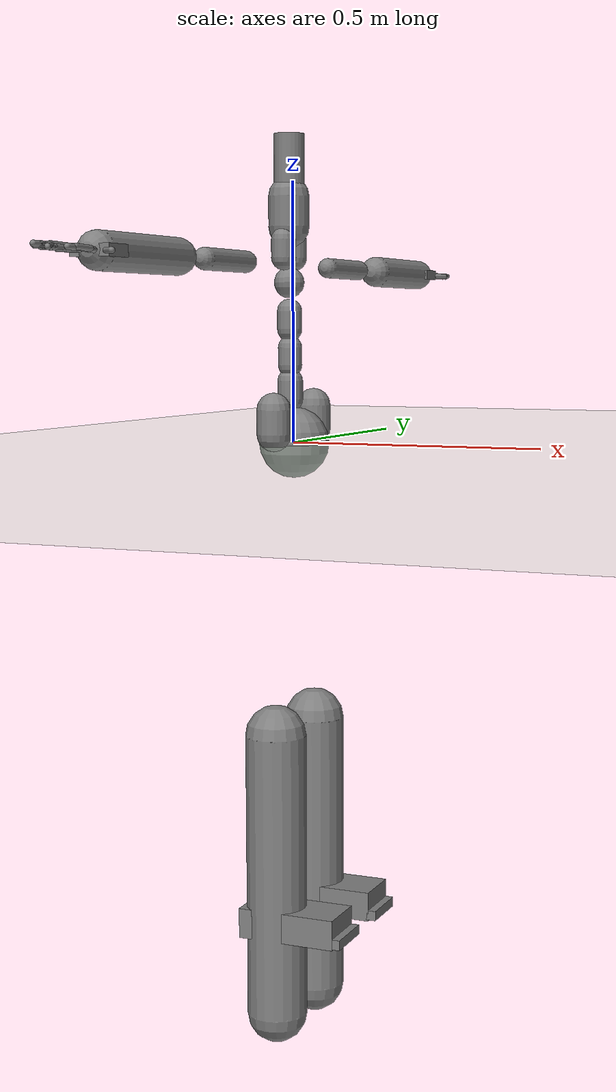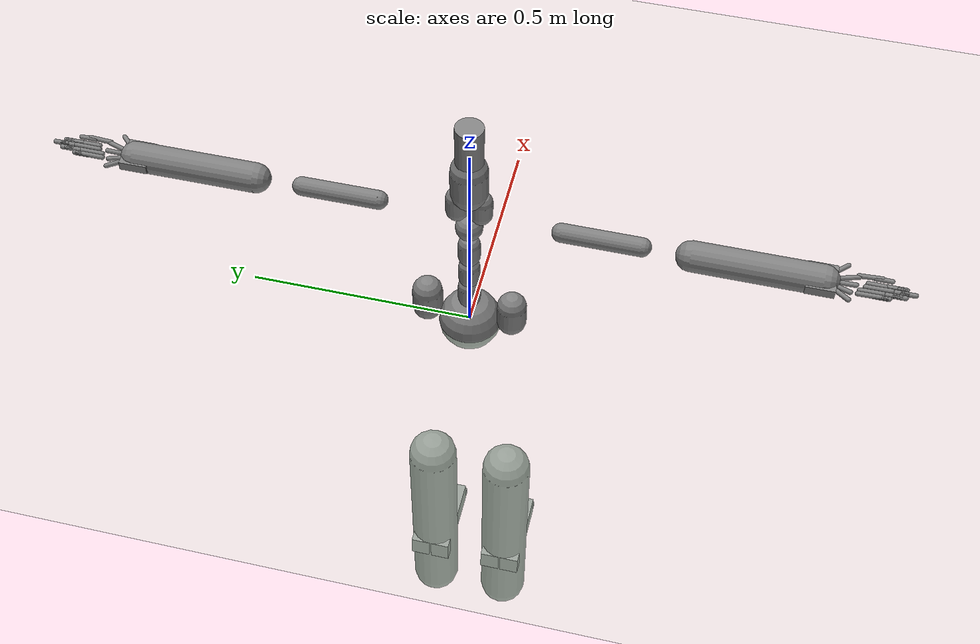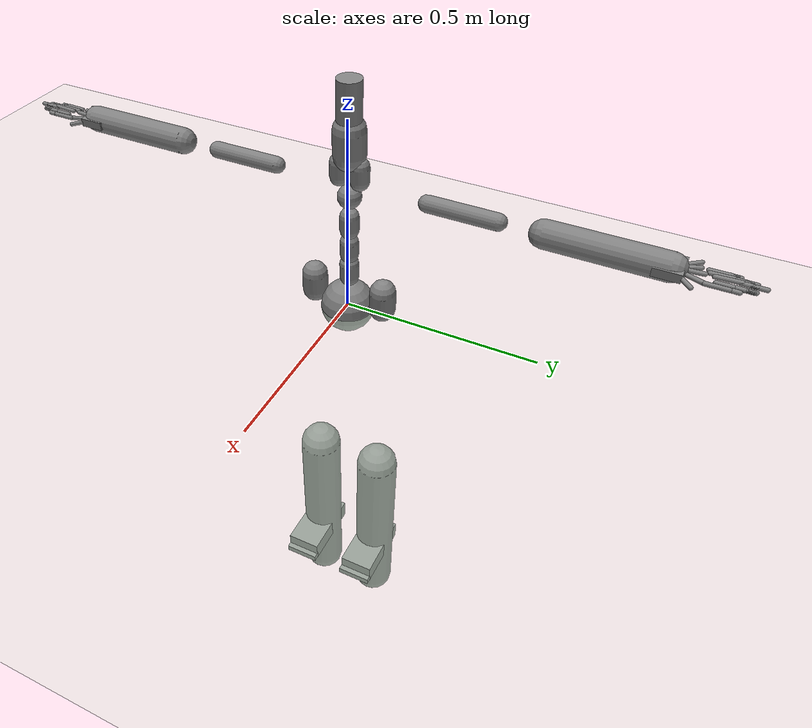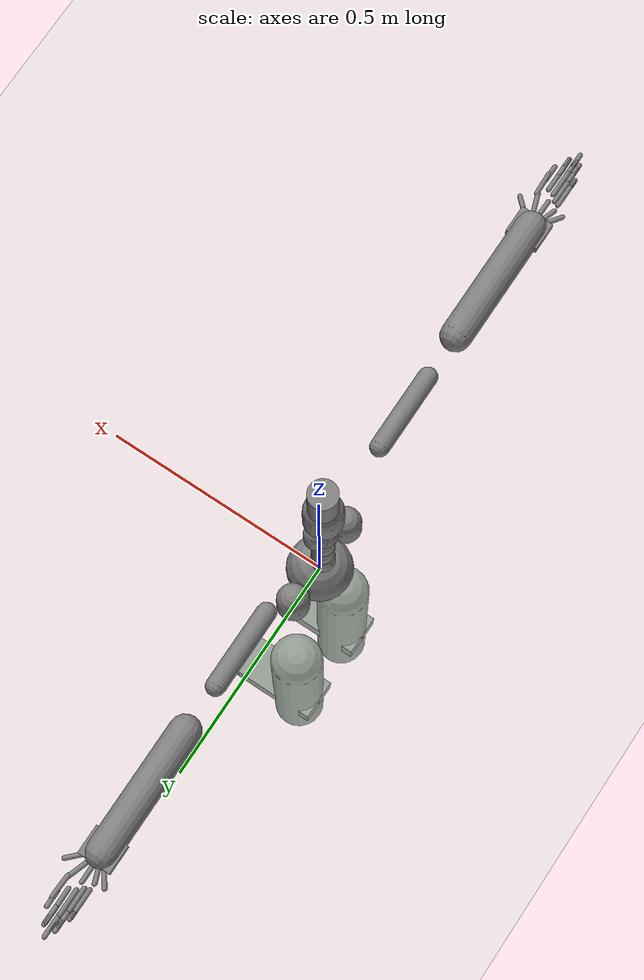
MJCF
<?xml version="1.0" ?>
<mujoco model="humanoid">
  <compiler coordinate="local"/>
  <statistic extent="2" center="0 0 1"/>
  <option timestep="0.00555"/>
  <default>
    <motor ctrlrange="-1 1" ctrllimited="true"/>
    <geom type="capsule" condim="1" friction="1.0 0.05 0.05" solimp=".9 .99 .003" solref=".015 1"/>
    <joint type="hinge" damping="0.1" stiffness="5" armature=".007" limited="true" solimplimit="0 .99 .01"/>
    <site size=".04" group="3"/>
  </default>
  <asset>
    <texture type="skybox" builtin="gradient" rgb1=".4 .5 .6" rgb2="0 0 0" width="100" height="100"/>
    <texture builtin="flat" height="1278" mark="cross" markrgb="1 1 1" name="texgeom" random="0.01" rgb1="0.8 0.6 0.4" rgb2="0.8 0.6 0.4" type="cube" width="127"/>
    <texture builtin="checker" height="100" name="texplane" rgb1="0 0 0" rgb2="0.8 0.8 0.8" type="2d" width="100"/>
    <material name="MatPlane" reflectance="0.5" shininess="1" specular="1" texrepeat="60 60" texture="texplane"/>
    <material name="geom" texture="texgeom" texuniform="true"/>
  </asset>
  <worldbody>
    <light cutoff="100" diffuse="1 1 1" dir="-0 0 -1.3" directional="true" exponent="1" pos="0 0 1.3" specular=".1 .1 .1"/>
    <geom conaffinity="1" condim="3" name="floor" pos="0 0 0" rgba="0.8 0.9 0.8 1" size="100 100 .2" type="plane" material="MatPlane"/>
    <body name="pHipOrigin" pos="0 0 0">
      <freejoint name="pHipOrigin"/>
      <geom type="sphere" contype="1" conaffinity="1" density="4629.6296296296305" size="0.06901" pos="0.0000 0.0000 -0.0000"/>
      <body name="jL5S1" pos="-0.00777689 0 0.06999177">
        <geom type="capsule" contype="1" conaffinity="1" density="1000" fromto="0 0 0.01408 0 0 0.04930" size="0.02465"/>
        <joint name="jL5S1_x" type="hinge" pos="0 0 0" axis="1 0 0" stiffness="500" damping="500" armature="0.02" range="-180.0000 180.0000"/>
        <joint name="jL5S1_y" type="hinge" pos="0 0 0" axis="0 1 0" stiffness="500" damping="500" armature="0.02" range="-180.0000 180.0000"/>
        <joint name="jL5S1_z" type="hinge" pos="0 0 0" axis="0 0 1" stiffness="500" damping="500" armature="0.02" range="-180.0000 180.0000"/>
        <body name="jL4L3" pos="0 0 0.06669865">
          <geom type="capsule" contype="1" conaffinity="1" density="1000" fromto="0 0 0.01334 0 0 0.04669" size="0.02334"/>
          <joint name="jL4L3_x" type="hinge" pos="0 0 0" axis="1 0 0" stiffness="500" damping="500" armature="0.02" range="-180.0000 180.0000"/>
          <joint name="jL4L3_y" type="hinge" pos="0 0 0" axis="0 1 0" stiffness="500" damping="500" armature="0.02" range="-180.0000 180.0000"/>
          <joint name="jL4L3_z" type="hinge" pos="0 0 0" axis="0 0 1" stiffness="500" damping="500" armature="0.02" range="-180.0000 180.0000"/>
          <body name="jL1T12" pos="-0.00052991 0 0.06868533">
            <geom type="capsule" contype="1" conaffinity="1" density="1000" fromto="0 0 0.01374 0 0 0.04808" size="0.02404"/>
            <joint name="jL1T12_x" type="hinge" pos="0 0 0" axis="1 0 0" stiffness="500" damping="500" armature="0.02" range="-180.0000 180.0000"/>
            <joint name="jL1T12_y" type="hinge" pos="0 0 0" axis="0 1 0" stiffness="500" damping="500" armature="0.02" range="-180.0000 180.0000"/>
            <joint name="jL1T12_z" type="hinge" pos="0 0 0" axis="0 0 1" stiffness="500" damping="500" armature="0.02" range="-180.0000 180.0000"/>
            <body name="jT9T8" pos="-0.00056753 0 0.07341858">
              <geom type="sphere" contype="1" conaffinity="1" density="1000" size="0.02937" pos="0.000 0.0000 0.029368"/>
              <joint name="jT9T8_x" type="hinge" pos="0 0 0" axis="1 0 0" stiffness="500" damping="500" armature="0.02" range="-180.0000 180.0000"/>
              <joint name="jT9T8_y" type="hinge" pos="0 0 0" axis="0 1 0" stiffness="500" damping="500" armature="0.02" range="-180.0000 180.0000"/>
              <joint name="jT9T8_z" type="hinge" pos="0 0 0" axis="0 0 1" stiffness="500" damping="500" armature="0.02" range="-180.0000 180.0000"/>
              <body name="jT1C7" pos="0 0 0.11275101">
                <geom type="capsule" contype="1" conaffinity="1" density="1000" fromto="0 0 0.02255 0 0 0.07893" size="0.03946"/>
                <joint name="jT1C7_x" type="hinge" pos="0 0 0" axis="1 0 0" stiffness="500" damping="500" armature="0.02" range="-180.0000 180.0000"/>
                <joint name="jT1C7_y" type="hinge" pos="0 0 0" axis="0 1 0" stiffness="500" damping="500" armature="0.02" range="-180.0000 180.0000"/>
                <joint name="jT1C7_z" type="hinge" pos="0 0 0" axis="0 0 1" stiffness="500" damping="500" armature="0.02" range="-180.0000 180.0000"/>
                <body name="jC1Head" pos="0.00115881 0 0.09822442">
                  <geom type="cylinder" contype="1" conaffinity="1" density="1000" fromto="0 0 0 0 0 0.09823" size="0.02947"/>
                  <joint name="jC1Head_x" type="hinge" pos="0 0 0" axis="1 0 0" stiffness="500" damping="500" armature="0.02" range="-180.0000 180.0000"/>
                  <joint name="jC1Head_y" type="hinge" pos="0 0 0" axis="0 1 0" stiffness="500" damping="500" armature="0.02" range="-180.0000 180.0000"/>
                  <joint name="jC1Head_z" type="hinge" pos="0 0 0" axis="0 0 1" stiffness="500" damping="500" armature="0.02" range="-180.0000 180.0000"/>
                </body>
              </body>
              <body name="jRightT4Shoulder" pos="0 -0.02567252 0.06259524">
                <geom type="capsule" contype="1" conaffinity="1" density="1000" fromto="0 0 0.01353 0 0 0.04736" size="0.02368"/>
                <joint name="jRightT4Shoulder_x" type="hinge" pos="0 0 0" axis="1 0 0" stiffness="500" damping="500" armature="0.02" range="-180.0000 180.0000"/>
                <joint name="jRightT4Shoulder_y" type="hinge" pos="0 0 0" axis="0 1 0" stiffness="500" damping="500" armature="0.02" range="-180.0000 180.0000"/>
                <joint name="jRightT4Shoulder_z" type="hinge" pos="0 0 0" axis="0 0 1" stiffness="500" damping="500" armature="0.02" range="-180.0000 180.0000"/>
                <body name="jRightShoulder" pos="0 -0.16582775 0">
                  <geom type="capsule" contype="1" conaffinity="1" density="1000" fromto="0 0 0 0.00000000 -0.16582775 0.00000000" size="0.01990"/>
                  <joint name="jRightShoulder_x" type="hinge" pos="0 0 0" axis="1 0 0" stiffness="500" damping="500" armature="0.02" range="-180.0000 180.0000"/>
                  <joint name="jRightShoulder_y" type="hinge" pos="0 0 0" axis="0 1 0" stiffness="500" damping="500" armature="0.02" range="-180.0000 180.0000"/>
                  <joint name="jRightShoulder_z" type="hinge" pos="0 0 0" axis="0 0 1" stiffness="500" damping="500" armature="0.02" range="-180.0000 180.0000"/>
                  <body name="jRightElbow" pos="0 -0.26546812 0">
                    <geom type="capsule" contype="1" conaffinity="1" density="1000" fromto="0 0 0 0.00000000 -0.26546812 0.00000000" size="0.03186"/>
                    <joint name="jRightElbow_x" type="hinge" pos="0 0 0" axis="1 0 0" stiffness="500" damping="500" armature="0.02" range="-180.0000 180.0000"/>
                    <joint name="jRightElbow_y" type="hinge" pos="0 0 0" axis="0 1 0" stiffness="500" damping="500" armature="0.02" range="-180.0000 180.0000"/>
                    <joint name="jRightElbow_z" type="hinge" pos="0 0 0" axis="0 0 1" stiffness="500" damping="500" armature="0.02" range="-180.0000 180.0000"/>
                    <body name="jRightWrist" pos="0.00010464 -0.25999904 0">
                      <geom density="1000" type="box" pos="0 0 0" size="0.035 0.03 0.01" quat="1.0000 0.0000 0.0000 0.0000"/>
                      <joint name="jRightWrist_x" type="hinge" pos="0 0 0" axis="1 0 0" stiffness="500" damping="500" armature="0.02" range="-180.0000 180.0000"/>
                      <joint name="jRightWrist_y" type="hinge" pos="0 0 0" axis="0 1 0" stiffness="500" damping="500" armature="0.02" range="-180.0000 180.0000"/>
                      <joint name="jRightWrist_z" type="hinge" pos="0 0 0" axis="0 0 1" stiffness="500" damping="500" armature="0.02" range="-180.0000 180.0000"/>
                      <body name="jRightFirstCMC" pos="0.02571220 -0.02464658 -0.00116441">
                        <geom type="capsule" contype="1" conaffinity="1" density="1000" fromto="0 0 0 0.02571220 -0.02464658 -0.00116441" size="0.005"/>
                        <joint name="jRightFirstCMC_x" type="hinge" pos="0 0 0" axis="1 0 0" stiffness="500" damping="500" armature="0.02" range="-180.0000 180.0000"/>
                        <joint name="jRightFirstCMC_y" type="hinge" pos="0 0 0" axis="0 1 0" stiffness="500" damping="500" armature="0.02" range="-180.0000 180.0000"/>
                        <joint name="jRightFirstCMC_z" type="hinge" pos="0 0 0" axis="0 0 1" stiffness="500" damping="500" armature="0.02" range="-180.0000 180.0000"/>
                        <body name="jRightFirstMCP" pos="0.00166209 -0.04690320 0.00099106">
                          <geom type="capsule" contype="1" conaffinity="1" density="1000" fromto="0 0 0 0.00166209 -0.04690320 0.00099106" size="0.005"/>
                          <joint name="jRightFirstMCP_x" type="hinge" pos="0 0 0" axis="1 0 0" stiffness="500" damping="500" armature="0.02" range="-180.0000 180.0000"/>
                          <joint name="jRightFirstMCP_y" type="hinge" pos="0 0 0" axis="0 1 0" stiffness="500" damping="500" armature="0.02" range="-180.0000 180.0000"/>
                          <joint name="jRightFirstMCP_z" type="hinge" pos="0 0 0" axis="0 0 1" stiffness="500" damping="500" armature="0.02" range="-180.0000 180.0000"/>
                          <body name="jRightIP" pos="0 -0.03297827 0">
                            <geom type="capsule" contype="1" conaffinity="1" density="1000" fromto="0 0 0 0.00000000 -0.03297827 0.00000000" size="0.005"/>
                            <joint name="jRightIP_x" type="hinge" pos="0 0 0" axis="1 0 0" stiffness="500" damping="500" armature="0.02" range="-180.0000 180.0000"/>
                            <joint name="jRightIP_y" type="hinge" pos="0 0 0" axis="0 1 0" stiffness="500" damping="500" armature="0.02" range="-180.0000 180.0000"/>
                            <joint name="jRightIP_z" type="hinge" pos="0 0 0" axis="0 0 1" stiffness="500" damping="500" armature="0.02" range="-180.0000 180.0000"/>
                          </body>
                        </body>
                      </body>
                      <body name="jRightSecondCMC" pos="0.01254790 -0.03666100 -0.00063946">
                        <geom type="capsule" contype="1" conaffinity="1" density="1000" fromto="0 0 0 0.01254790 -0.03666100 -0.00063946" size="0.005"/>
                        <joint name="jRightSecondCMC_x" type="hinge" pos="0 0 0" axis="1 0 0" stiffness="500" damping="500" armature="0.02" range="-180.0000 180.0000"/>
                        <joint name="jRightSecondCMC_y" type="hinge" pos="0 0 0" axis="0 1 0" stiffness="500" damping="500" armature="0.02" range="-180.0000 180.0000"/>
                        <joint name="jRightSecondCMC_z" type="hinge" pos="0 0 0" axis="0 0 1" stiffness="500" damping="500" armature="0.02" range="-180.0000 180.0000"/>
                        <body name="jRightSecondMCP" pos="-0.00034293 -0.05469481 -0.00056737">
                          <geom type="capsule" contype="1" conaffinity="1" density="1000" fromto="0 0 0 -0.00034293 -0.05469481 -0.00056737" size="0.005"/>
                          <joint name="jRightSecondMCP_x" type="hinge" pos="0 0 0" axis="1 0 0" stiffness="500" damping="500" armature="0.02" range="-180.0000 180.0000"/>
                          <joint name="jRightSecondMCP_y" type="hinge" pos="0 0 0" axis="0 1 0" stiffness="500" damping="500" armature="0.02" range="-180.0000 180.0000"/>
                          <joint name="jRightSecondMCP_z" type="hinge" pos="0 0 0" axis="0 0 1" stiffness="500" damping="500" armature="0.02" range="-180.0000 180.0000"/>
                          <body name="jRightSecondPIP" pos="0 -0.03749780 0">
                            <geom type="capsule" contype="1" conaffinity="1" density="1000" fromto="0 0 0 0.00000000 -0.03749780 0.00000000" size="0.005"/>
                            <joint name="jRightSecondPIP_x" type="hinge" pos="0 0 0" axis="1 0 0" stiffness="500" damping="500" armature="0.02" range="-180.0000 180.0000"/>
                            <joint name="jRightSecondPIP_y" type="hinge" pos="0 0 0" axis="0 1 0" stiffness="500" damping="500" armature="0.02" range="-180.0000 180.0000"/>
                            <joint name="jRightSecondPIP_z" type="hinge" pos="0 0 0" axis="0 0 1" stiffness="500" damping="500" armature="0.02" range="-180.0000 180.0000"/>
                            <body name="jRightSecondDIP" pos="0 -0.01910612 0">
                              <geom type="capsule" contype="1" conaffinity="1" density="1000" fromto="0 0 0 0.00000000 -0.01910612 0.00000000" size="0.005"/>
                              <joint name="jRightSecondDIP_x" type="hinge" pos="0 0 0" axis="1 0 0" stiffness="500" damping="500" armature="0.02" range="-180.0000 180.0000"/>
                              <joint name="jRightSecondDIP_y" type="hinge" pos="0 0 0" axis="0 1 0" stiffness="500" damping="500" armature="0.02" range="-180.0000 180.0000"/>
                              <joint name="jRightSecondDIP_z" type="hinge" pos="0 0 0" axis="0 0 1" stiffness="500" damping="500" armature="0.02" range="-180.0000 180.0000"/>
                            </body>
                          </body>
                        </body>
                      </body>
                      <body name="jRightThirdCMC" pos="-0.00063111 -0.03412874 0.00143482">
                        <geom type="capsule" contype="1" conaffinity="1" density="1000" fromto="0 0 0 -0.00063111 -0.03412874 0.00143482" size="0.005"/>
                        <joint name="jRightThirdCMC_x" type="hinge" pos="0 0 0" axis="1 0 0" stiffness="500" damping="500" armature="0.02" range="-180.0000 180.0000"/>
                        <joint name="jRightThirdCMC_y" type="hinge" pos="0 0 0" axis="0 1 0" stiffness="500" damping="500" armature="0.02" range="-180.0000 180.0000"/>
                        <joint name="jRightThirdCMC_z" type="hinge" pos="0 0 0" axis="0 0 1" stiffness="500" damping="500" armature="0.02" range="-180.0000 180.0000"/>
                        <body name="jRightThirdMCP" pos="-0.00062729 -0.05197079 0.00141393">
                          <geom type="capsule" contype="1" conaffinity="1" density="1000" fromto="0 0 0 -0.00062729 -0.05197079 0.00141393" size="0.005"/>
                          <joint name="jRightThirdMCP_x" type="hinge" pos="0 0 0" axis="1 0 0" stiffness="500" damping="500" armature="0.02" range="-180.0000 180.0000"/>
                          <joint name="jRightThirdMCP_y" type="hinge" pos="0 0 0" axis="0 1 0" stiffness="500" damping="500" armature="0.02" range="-180.0000 180.0000"/>
                          <joint name="jRightThirdMCP_z" type="hinge" pos="0 0 0" axis="0 0 1" stiffness="500" damping="500" armature="0.02" range="-180.0000 180.0000"/>
                          <body name="jRightThirdPIP" pos="0 -0.04928286 0">
                            <geom type="capsule" contype="1" conaffinity="1" density="1000" fromto="0 0 0 0.00000000 -0.04928286 0.00000000" size="0.005"/>
                            <joint name="jRightThirdPIP_x" type="hinge" pos="0 0 0" axis="1 0 0" stiffness="500" damping="500" armature="0.02" range="-180.0000 180.0000"/>
                            <joint name="jRightThirdPIP_y" type="hinge" pos="0 0 0" axis="0 1 0" stiffness="500" damping="500" armature="0.02" range="-180.0000 180.0000"/>
                            <joint name="jRightThirdPIP_z" type="hinge" pos="0 0 0" axis="0 0 1" stiffness="500" damping="500" armature="0.02" range="-180.0000 180.0000"/>
                            <body name="jRightThirdDIP" pos="0 -0.01802377 0">
                              <geom type="capsule" contype="1" conaffinity="1" density="1000" fromto="0 0 0 0.00000000 -0.01802377 0.00000000" size="0.005"/>
                              <joint name="jRightThirdDIP_x" type="hinge" pos="0 0 0" axis="1 0 0" stiffness="500" damping="500" armature="0.02" range="-180.0000 180.0000"/>
                              <joint name="jRightThirdDIP_y" type="hinge" pos="0 0 0" axis="0 1 0" stiffness="500" damping="500" armature="0.02" range="-180.0000 180.0000"/>
                              <joint name="jRightThirdDIP_z" type="hinge" pos="0 0 0" axis="0 0 1" stiffness="500" damping="500" armature="0.02" range="-180.0000 180.0000"/>
                            </body>
                          </body>
                        </body>
                      </body>
                      <body name="jRightFourthCMC" pos="-0.01052197 -0.02930542 0.00068980">
                        <geom type="capsule" contype="1" conaffinity="1" density="1000" fromto="0 0 0 -0.01052197 -0.02930542 0.00068980" size="0.005"/>
                        <joint name="jRightFourthCMC_x" type="hinge" pos="0 0 0" axis="1 0 0" stiffness="500" damping="500" armature="0.02" range="-180.0000 180.0000"/>
                        <joint name="jRightFourthCMC_y" type="hinge" pos="0 0 0" axis="0 1 0" stiffness="500" damping="500" armature="0.02" range="-180.0000 180.0000"/>
                        <joint name="jRightFourthCMC_z" type="hinge" pos="0 0 0" axis="0 0 1" stiffness="500" damping="500" armature="0.02" range="-180.0000 180.0000"/>
                        <body name="jRightFourthMCP" pos="-0.00033869 -0.04642027 0.00072930">
                          <geom type="capsule" contype="1" conaffinity="1" density="1000" fromto="0 0 0 -0.00033869 -0.04642027 0.00072930" size="0.005"/>
                          <joint name="jRightFourthMCP_x" type="hinge" pos="0 0 0" axis="1 0 0" stiffness="500" damping="500" armature="0.02" range="-180.0000 180.0000"/>
                          <joint name="jRightFourthMCP_y" type="hinge" pos="0 0 0" axis="0 1 0" stiffness="500" damping="500" armature="0.02" range="-180.0000 180.0000"/>
                          <joint name="jRightFourthMCP_z" type="hinge" pos="0 0 0" axis="0 0 1" stiffness="500" damping="500" armature="0.02" range="-180.0000 180.0000"/>
                          <body name="jRightFourthPIP" pos="0 -0.04514052 0">
                            <geom type="capsule" contype="1" conaffinity="1" density="1000" fromto="0 0 0 0.00000000 -0.04514052 0.00000000" size="0.005"/>
                            <joint name="jRightFourthPIP_x" type="hinge" pos="0 0 0" axis="1 0 0" stiffness="500" damping="500" armature="0.02" range="-180.0000 180.0000"/>
                            <joint name="jRightFourthPIP_y" type="hinge" pos="0 0 0" axis="0 1 0" stiffness="500" damping="500" armature="0.02" range="-180.0000 180.0000"/>
                            <joint name="jRightFourthPIP_z" type="hinge" pos="0 0 0" axis="0 0 1" stiffness="500" damping="500" armature="0.02" range="-180.0000 180.0000"/>
                            <body name="jRightFourthDIP" pos="0 -0.01929930 0">
                              <geom type="capsule" contype="1" conaffinity="1" density="1000" fromto="0 0 0 0.00000000 -0.01929930 0.00000000" size="0.005"/>
                              <joint name="jRightFourthDIP_x" type="hinge" pos="0 0 0" axis="1 0 0" stiffness="500" damping="500" armature="0.02" range="-180.0000 180.0000"/>
                              <joint name="jRightFourthDIP_y" type="hinge" pos="0 0 0" axis="0 1 0" stiffness="500" damping="500" armature="0.02" range="-180.0000 180.0000"/>
                              <joint name="jRightFourthDIP_z" type="hinge" pos="0 0 0" axis="0 0 1" stiffness="500" damping="500" armature="0.02" range="-180.0000 180.0000"/>
                            </body>
                          </body>
                        </body>
                      </body>
                      <body name="jRightFifthCMC" pos="-0.02038667 -0.02840650 0.00056037">
                        <geom type="capsule" contype="1" conaffinity="1" density="1000" fromto="0 0 0 -0.02038667 -0.02840650 0.00056037" size="0.005"/>
                        <joint name="jRightFifthCMC_x" type="hinge" pos="0 0 0" axis="1 0 0" stiffness="500" damping="500" armature="0.02" range="-180.0000 180.0000"/>
                        <joint name="jRightFifthCMC_y" type="hinge" pos="0 0 0" axis="0 1 0" stiffness="500" damping="500" armature="0.02" range="-180.0000 180.0000"/>
                        <joint name="jRightFifthCMC_z" type="hinge" pos="0 0 0" axis="0 0 1" stiffness="500" damping="500" armature="0.02" range="-180.0000 180.0000"/>
                        <body name="jRightFifthMCP" pos="-0.00000656 -0.04441619 0.00061122">
                          <geom type="capsule" contype="1" conaffinity="1" density="1000" fromto="0 0 0 -0.00000656 -0.04441619 0.00061122" size="0.005"/>
                          <joint name="jRightFifthMCP_x" type="hinge" pos="0 0 0" axis="1 0 0" stiffness="500" damping="500" armature="0.02" range="-180.0000 180.0000"/>
                          <joint name="jRightFifthMCP_y" type="hinge" pos="0 0 0" axis="0 1 0" stiffness="500" damping="500" armature="0.02" range="-180.0000 180.0000"/>
                          <joint name="jRightFifthMCP_z" type="hinge" pos="0 0 0" axis="0 0 1" stiffness="500" damping="500" armature="0.02" range="-180.0000 180.0000"/>
                          <body name="jRightFifthPIP" pos="0 -0.03095787 0">
                            <geom type="capsule" contype="1" conaffinity="1" density="1000" fromto="0 0 0 0.00000000 -0.03095787 0.00000000" size="0.005"/>
                            <joint name="jRightFifthPIP_x" type="hinge" pos="0 0 0" axis="1 0 0" stiffness="500" damping="500" armature="0.02" range="-180.0000 180.0000"/>
                            <joint name="jRightFifthPIP_y" type="hinge" pos="0 0 0" axis="0 1 0" stiffness="500" damping="500" armature="0.02" range="-180.0000 180.0000"/>
                            <joint name="jRightFifthPIP_z" type="hinge" pos="0 0 0" axis="0 0 1" stiffness="500" damping="500" armature="0.02" range="-180.0000 180.0000"/>
                            <body name="jRightFifthDIP" pos="0 -0.01410868 0">
                              <geom type="capsule" contype="1" conaffinity="1" density="1000" fromto="0 0 0 0.00000000 -0.01410868 0.00000000" size="0.005"/>
                              <joint name="jRightFifthDIP_x" type="hinge" pos="0 0 0" axis="1 0 0" stiffness="500" damping="500" armature="0.02" range="-180.0000 180.0000"/>
                              <joint name="jRightFifthDIP_y" type="hinge" pos="0 0 0" axis="0 1 0" stiffness="500" damping="500" armature="0.02" range="-180.0000 180.0000"/>
                              <joint name="jRightFifthDIP_z" type="hinge" pos="0 0 0" axis="0 0 1" stiffness="500" damping="500" armature="0.02" range="-180.0000 180.0000"/>
                            </body>
                          </body>
                        </body>
                      </body>
                    </body>
                  </body>
                </body>
              </body>
              <body name="jLeftT4Shoulder" pos="0 0.02568334 0.06262162">
                <geom type="capsule" contype="1" conaffinity="1" density="1000" fromto="0 0 0.01354 0 0 0.04738" size="0.02369"/>
                <joint name="jLeftT4Shoulder_x" type="hinge" pos="0 0 0" axis="1 0 0" stiffness="500" damping="500" armature="0.02" range="-180.0000 180.0000"/>
                <joint name="jLeftT4Shoulder_y" type="hinge" pos="0 0 0" axis="0 1 0" stiffness="500" damping="500" armature="0.02" range="-180.0000 180.0000"/>
                <joint name="jLeftT4Shoulder_z" type="hinge" pos="0 0 0" axis="0 0 1" stiffness="500" damping="500" armature="0.02" range="-180.0000 180.0000"/>
                <body name="jLeftShoulder" pos="0 0.16566575 0">
                  <geom type="capsule" contype="1" conaffinity="1" density="1000" fromto="0 0 0 0.00000000 0.16566575 0.00000000" size="0.01988"/>
                  <joint name="jLeftShoulder_x" type="hinge" pos="0 0 0" axis="1 0 0" stiffness="500" damping="500" armature="0.02" range="-180.0000 180.0000"/>
                  <joint name="jLeftShoulder_y" type="hinge" pos="0 0 0" axis="0 1 0" stiffness="500" damping="500" armature="0.02" range="-180.0000 180.0000"/>
                  <joint name="jLeftShoulder_z" type="hinge" pos="0 0 0" axis="0 0 1" stiffness="500" damping="500" armature="0.02" range="-180.0000 180.0000"/>
                  <body name="jLeftElbow" pos="0 0.26511949 0">
                    <geom type="capsule" contype="1" conaffinity="1" density="1000" fromto="0 0 0 0.00000000 0.26511949 0.00000000" size="0.03181"/>
                    <joint name="jLeftElbow_x" type="hinge" pos="0 0 0" axis="1 0 0" stiffness="500" damping="500" armature="0.02" range="-180.0000 180.0000"/>
                    <joint name="jLeftElbow_y" type="hinge" pos="0 0 0" axis="0 1 0" stiffness="500" damping="500" armature="0.02" range="-180.0000 180.0000"/>
                    <joint name="jLeftElbow_z" type="hinge" pos="0 0 0" axis="0 0 1" stiffness="500" damping="500" armature="0.02" range="-180.0000 180.0000"/>
                    <body name="jLeftWrist" pos="0.00010463 0.25997171 0">
                      <geom density="1000" type="box" pos="0 0 0" size="0.035 0.03 0.01" quat="1.0000 0.0000 0.0000 0.0000"/>
                      <joint name="jLeftWrist_x" type="hinge" pos="0 0 0" axis="1 0 0" stiffness="500" damping="500" armature="0.02" range="-180.0000 180.0000"/>
                      <joint name="jLeftWrist_y" type="hinge" pos="0 0 0" axis="0 1 0" stiffness="500" damping="500" armature="0.02" range="-180.0000 180.0000"/>
                      <joint name="jLeftWrist_z" type="hinge" pos="0 0 0" axis="0 0 1" stiffness="500" damping="500" armature="0.02" range="-180.0000 180.0000"/>
                      <body name="jLeftFirstCMC" pos="0.02516619 0.02522562 -0.00112636">
                        <geom type="capsule" contype="1" conaffinity="1" density="1000" fromto="0 0 0 0.02516619 0.02522562 -0.00112636" size="0.005"/>
                        <joint name="jLeftFirstCMC_x" type="hinge" pos="0 0 0" axis="1 0 0" stiffness="500" damping="500" armature="0.02" range="-180.0000 180.0000"/>
                        <joint name="jLeftFirstCMC_y" type="hinge" pos="0 0 0" axis="0 1 0" stiffness="500" damping="500" armature="0.02" range="-180.0000 180.0000"/>
                        <joint name="jLeftFirstCMC_z" type="hinge" pos="0 0 0" axis="0 0 1" stiffness="500" damping="500" armature="0.02" range="-180.0000 180.0000"/>
                        <body name="jLeftFirstMCP" pos="0.00164608 0.04690215 0.00096583">
                          <geom type="capsule" contype="1" conaffinity="1" density="1000" fromto="0 0 0 0.00164608 0.04690215 0.00096583" size="0.005"/>
                          <joint name="jLeftFirstMCP_x" type="hinge" pos="0 0 0" axis="1 0 0" stiffness="500" damping="500" armature="0.02" range="-180.0000 180.0000"/>
                          <joint name="jLeftFirstMCP_y" type="hinge" pos="0 0 0" axis="0 1 0" stiffness="500" damping="500" armature="0.02" range="-180.0000 180.0000"/>
                          <joint name="jLeftFirstMCP_z" type="hinge" pos="0 0 0" axis="0 0 1" stiffness="500" damping="500" armature="0.02" range="-180.0000 180.0000"/>
                          <body name="jLeftIP" pos="0 0.03297827 0">
                            <geom type="capsule" contype="1" conaffinity="1" density="1000" fromto="0 0 0 0.00000000 0.03297827 0.00000000" size="0.005"/>
                            <joint name="jLeftIP_x" type="hinge" pos="0 0 0" axis="1 0 0" stiffness="500" damping="500" armature="0.02" range="-180.0000 180.0000"/>
                            <joint name="jLeftIP_y" type="hinge" pos="0 0 0" axis="0 1 0" stiffness="500" damping="500" armature="0.02" range="-180.0000 180.0000"/>
                            <joint name="jLeftIP_z" type="hinge" pos="0 0 0" axis="0 0 1" stiffness="500" damping="500" armature="0.02" range="-180.0000 180.0000"/>
                          </body>
                        </body>
                      </body>
                      <body name="jLeftSecondCMC" pos="0.01269243 0.03659354 -0.00064474">
                        <geom type="capsule" contype="1" conaffinity="1" density="1000" fromto="0 0 0 0.01269243 0.03659354 -0.00064474" size="0.005"/>
                        <joint name="jLeftSecondCMC_x" type="hinge" pos="0 0 0" axis="1 0 0" stiffness="500" damping="500" armature="0.02" range="-180.0000 180.0000"/>
                        <joint name="jLeftSecondCMC_y" type="hinge" pos="0 0 0" axis="0 1 0" stiffness="500" damping="500" armature="0.02" range="-180.0000 180.0000"/>
                        <joint name="jLeftSecondCMC_z" type="hinge" pos="0 0 0" axis="0 0 1" stiffness="500" damping="500" armature="0.02" range="-180.0000 180.0000"/>
                        <body name="jLeftSecondMCP" pos="-0.00029901 0.05469593 -0.00057438">
                          <geom type="capsule" contype="1" conaffinity="1" density="1000" fromto="0 0 0 -0.00029901 0.05469593 -0.00057438" size="0.005"/>
                          <joint name="jLeftSecondMCP_x" type="hinge" pos="0 0 0" axis="1 0 0" stiffness="500" damping="500" armature="0.02" range="-180.0000 180.0000"/>
                          <joint name="jLeftSecondMCP_y" type="hinge" pos="0 0 0" axis="0 1 0" stiffness="500" damping="500" armature="0.02" range="-180.0000 180.0000"/>
                          <joint name="jLeftSecondMCP_z" type="hinge" pos="0 0 0" axis="0 0 1" stiffness="500" damping="500" armature="0.02" range="-180.0000 180.0000"/>
                          <body name="jLeftSecondPIP" pos="0 0.03749780 0">
                            <geom type="capsule" contype="1" conaffinity="1" density="1000" fromto="0 0 0 0.00000000 0.03749780 0.00000000" size="0.005"/>
                            <joint name="jLeftSecondPIP_x" type="hinge" pos="0 0 0" axis="1 0 0" stiffness="500" damping="500" armature="0.02" range="-180.0000 180.0000"/>
                            <joint name="jLeftSecondPIP_y" type="hinge" pos="0 0 0" axis="0 1 0" stiffness="500" damping="500" armature="0.02" range="-180.0000 180.0000"/>
                            <joint name="jLeftSecondPIP_z" type="hinge" pos="0 0 0" axis="0 0 1" stiffness="500" damping="500" armature="0.02" range="-180.0000 180.0000"/>
                            <body name="jLeftSecondDIP" pos="0 0.01910612 0">
                              <geom type="capsule" contype="1" conaffinity="1" density="1000" fromto="0 0 0 0.00000000 0.01910612 0.00000000" size="0.005"/>
                              <joint name="jLeftSecondDIP_x" type="hinge" pos="0 0 0" axis="1 0 0" stiffness="500" damping="500" armature="0.02" range="-180.0000 180.0000"/>
                              <joint name="jLeftSecondDIP_y" type="hinge" pos="0 0 0" axis="0 1 0" stiffness="500" damping="500" armature="0.02" range="-180.0000 180.0000"/>
                              <joint name="jLeftSecondDIP_z" type="hinge" pos="0 0 0" axis="0 0 1" stiffness="500" damping="500" armature="0.02" range="-180.0000 180.0000"/>
                            </body>
                          </body>
                        </body>
                      </body>
                      <body name="jLeftThirdCMC" pos="-0.00063481 0.03413181 0.00138700">
                        <geom type="capsule" contype="1" conaffinity="1" density="1000" fromto="0 0 0 -0.00063481 0.03413181 0.00138700" size="0.005"/>
                        <joint name="jLeftThirdCMC_x" type="hinge" pos="0 0 0" axis="1 0 0" stiffness="500" damping="500" armature="0.02" range="-180.0000 180.0000"/>
                        <joint name="jLeftThirdCMC_y" type="hinge" pos="0 0 0" axis="0 1 0" stiffness="500" damping="500" armature="0.02" range="-180.0000 180.0000"/>
                        <joint name="jLeftThirdCMC_z" type="hinge" pos="0 0 0" axis="0 0 1" stiffness="500" damping="500" armature="0.02" range="-180.0000 180.0000"/>
                        <body name="jLeftThirdMCP" pos="-0.00063235 0.05197180 0.00138550">
                          <geom type="capsule" contype="1" conaffinity="1" density="1000" fromto="0 0 0 -0.00063235 0.05197180 0.00138550" size="0.005"/>
                          <joint name="jLeftThirdMCP_x" type="hinge" pos="0 0 0" axis="1 0 0" stiffness="500" damping="500" armature="0.02" range="-180.0000 180.0000"/>
                          <joint name="jLeftThirdMCP_y" type="hinge" pos="0 0 0" axis="0 1 0" stiffness="500" damping="500" armature="0.02" range="-180.0000 180.0000"/>
                          <joint name="jLeftThirdMCP_z" type="hinge" pos="0 0 0" axis="0 0 1" stiffness="500" damping="500" armature="0.02" range="-180.0000 180.0000"/>
                          <body name="jLeftThirdPIP" pos="0 0.04928286 0">
                            <geom type="capsule" contype="1" conaffinity="1" density="1000" fromto="0 0 0 0.00000000 0.04928286 0.00000000" size="0.005"/>
                            <joint name="jLeftThirdPIP_x" type="hinge" pos="0 0 0" axis="1 0 0" stiffness="500" damping="500" armature="0.02" range="-180.0000 180.0000"/>
                            <joint name="jLeftThirdPIP_y" type="hinge" pos="0 0 0" axis="0 1 0" stiffness="500" damping="500" armature="0.02" range="-180.0000 180.0000"/>
                            <joint name="jLeftThirdPIP_z" type="hinge" pos="0 0 0" axis="0 0 1" stiffness="500" damping="500" armature="0.02" range="-180.0000 180.0000"/>
                            <body name="jLeftThirdDIP" pos="0 0.01802377 0">
                              <geom type="capsule" contype="1" conaffinity="1" density="1000" fromto="0 0 0 0.00000000 0.01802377 0.00000000" size="0.005"/>
                              <joint name="jLeftThirdDIP_x" type="hinge" pos="0 0 0" axis="1 0 0" stiffness="500" damping="500" armature="0.02" range="-180.0000 180.0000"/>
                              <joint name="jLeftThirdDIP_y" type="hinge" pos="0 0 0" axis="0 1 0" stiffness="500" damping="500" armature="0.02" range="-180.0000 180.0000"/>
                              <joint name="jLeftThirdDIP_z" type="hinge" pos="0 0 0" axis="0 0 1" stiffness="500" damping="500" armature="0.02" range="-180.0000 180.0000"/>
                            </body>
                          </body>
                        </body>
                      </body>
                      <body name="jLeftFourthCMC" pos="-0.01090805 0.02915552 0.00073636">
                        <geom type="capsule" contype="1" conaffinity="1" density="1000" fromto="0 0 0 -0.01090805 0.02915552 0.00073636" size="0.005"/>
                        <joint name="jLeftFourthCMC_x" type="hinge" pos="0 0 0" axis="1 0 0" stiffness="500" damping="500" armature="0.02" range="-180.0000 180.0000"/>
                        <joint name="jLeftFourthCMC_y" type="hinge" pos="0 0 0" axis="0 1 0" stiffness="500" damping="500" armature="0.02" range="-180.0000 180.0000"/>
                        <joint name="jLeftFourthCMC_z" type="hinge" pos="0 0 0" axis="0 0 1" stiffness="500" damping="500" armature="0.02" range="-180.0000 180.0000"/>
                        <body name="jLeftFourthMCP" pos="-0.00036423 0.04641761 0.00077132">
                          <geom type="capsule" contype="1" conaffinity="1" density="1000" fromto="0 0 0 -0.00036423 0.04641761 0.00077132" size="0.005"/>
                          <joint name="jLeftFourthMCP_x" type="hinge" pos="0 0 0" axis="1 0 0" stiffness="500" damping="500" armature="0.02" range="-180.0000 180.0000"/>
                          <joint name="jLeftFourthMCP_y" type="hinge" pos="0 0 0" axis="0 1 0" stiffness="500" damping="500" armature="0.02" range="-180.0000 180.0000"/>
                          <joint name="jLeftFourthMCP_z" type="hinge" pos="0 0 0" axis="0 0 1" stiffness="500" damping="500" armature="0.02" range="-180.0000 180.0000"/>
                          <body name="jLeftFourthPIP" pos="0 0.04514052 0">
                            <geom type="capsule" contype="1" conaffinity="1" density="1000" fromto="0 0 0 0.00000000 0.04514052 0.00000000" size="0.005"/>
                            <joint name="jLeftFourthPIP_x" type="hinge" pos="0 0 0" axis="1 0 0" stiffness="500" damping="500" armature="0.02" range="-180.0000 180.0000"/>
                            <joint name="jLeftFourthPIP_y" type="hinge" pos="0 0 0" axis="0 1 0" stiffness="500" damping="500" armature="0.02" range="-180.0000 180.0000"/>
                            <joint name="jLeftFourthPIP_z" type="hinge" pos="0 0 0" axis="0 0 1" stiffness="500" damping="500" armature="0.02" range="-180.0000 180.0000"/>
                            <body name="jLeftFourthDIP" pos="0 0.01929930 0">
                              <geom type="capsule" contype="1" conaffinity="1" density="1000" fromto="0 0 0 0.00000000 0.01929930 0.00000000" size="0.005"/>
                              <joint name="jLeftFourthDIP_x" type="hinge" pos="0 0 0" axis="1 0 0" stiffness="500" damping="500" armature="0.02" range="-180.0000 180.0000"/>
                              <joint name="jLeftFourthDIP_y" type="hinge" pos="0 0 0" axis="0 1 0" stiffness="500" damping="500" armature="0.02" range="-180.0000 180.0000"/>
                              <joint name="jLeftFourthDIP_z" type="hinge" pos="0 0 0" axis="0 0 1" stiffness="500" damping="500" armature="0.02" range="-180.0000 180.0000"/>
                            </body>
                          </body>
                        </body>
                      </body>
                      <body name="jLeftFifthCMC" pos="-0.02100426 0.02795741 0.00056938">
                        <geom type="capsule" contype="1" conaffinity="1" density="1000" fromto="0 0 0 -0.02100426 0.02795741 0.00056938" size="0.005"/>
                        <joint name="jLeftFifthCMC_x" type="hinge" pos="0 0 0" axis="1 0 0" stiffness="500" damping="500" armature="0.02" range="-180.0000 180.0000"/>
                        <joint name="jLeftFifthCMC_y" type="hinge" pos="0 0 0" axis="0 1 0" stiffness="500" damping="500" armature="0.02" range="-180.0000 180.0000"/>
                        <joint name="jLeftFifthCMC_z" type="hinge" pos="0 0 0" axis="0 0 1" stiffness="500" damping="500" armature="0.02" range="-180.0000 180.0000"/>
                        <body name="jLeftFifthMCP" pos="-0.00001260 0.04441498 0.00063910">
                          <geom type="capsule" contype="1" conaffinity="1" density="1000" fromto="0 0 0 -0.00001260 0.04441498 0.00063910" size="0.005"/>
                          <joint name="jLeftFifthMCP_x" type="hinge" pos="0 0 0" axis="1 0 0" stiffness="500" damping="500" armature="0.02" range="-180.0000 180.0000"/>
                          <joint name="jLeftFifthMCP_y" type="hinge" pos="0 0 0" axis="0 1 0" stiffness="500" damping="500" armature="0.02" range="-180.0000 180.0000"/>
                          <joint name="jLeftFifthMCP_z" type="hinge" pos="0 0 0" axis="0 0 1" stiffness="500" damping="500" armature="0.02" range="-180.0000 180.0000"/>
                          <body name="jLeftFifthPIP" pos="0 0.03095787 0">
                            <geom type="capsule" contype="1" conaffinity="1" density="1000" fromto="0 0 0 0.00000000 0.03095787 0.00000000" size="0.005"/>
                            <joint name="jLeftFifthPIP_x" type="hinge" pos="0 0 0" axis="1 0 0" stiffness="500" damping="500" armature="0.02" range="-180.0000 180.0000"/>
                            <joint name="jLeftFifthPIP_y" type="hinge" pos="0 0 0" axis="0 1 0" stiffness="500" damping="500" armature="0.02" range="-180.0000 180.0000"/>
                            <joint name="jLeftFifthPIP_z" type="hinge" pos="0 0 0" axis="0 0 1" stiffness="500" damping="500" armature="0.02" range="-180.0000 180.0000"/>
                            <body name="jLeftFifthDIP" pos="0 0.01410868 0">
                              <geom type="capsule" contype="1" conaffinity="1" density="1000" fromto="0 0 0 0.00000000 0.01410868 0.00000000" size="0.005"/>
                              <joint name="jLeftFifthDIP_x" type="hinge" pos="0 0 0" axis="1 0 0" stiffness="500" damping="500" armature="0.02" range="-180.0000 180.0000"/>
                              <joint name="jLeftFifthDIP_y" type="hinge" pos="0 0 0" axis="0 1 0" stiffness="500" damping="500" armature="0.02" range="-180.0000 180.0000"/>
                              <joint name="jLeftFifthDIP_z" type="hinge" pos="0 0 0" axis="0 0 1" stiffness="500" damping="500" armature="0.02" range="-180.0000 180.0000"/>
                            </body>
                          </body>
                        </body>
                      </body>
                    </body>
                  </body>
                </body>
              </body>
            </body>
          </body>
        </body>
      </body>
      <body name="jRightHip" pos="-0.00015787 -0.09368982 0.00142125">
        <geom type="capsule" contype="1" conaffinity="1" density="1000" fromto="0 0 0.01874 0 0 0.06559" size="0.03280"/>
        <joint name="jRightHip_x" type="hinge" pos="0 0 0" axis="1 0 0" stiffness="500" damping="500" armature="0.02" range="-180.0000 180.0000"/>
        <joint name="jRightHip_y" type="hinge" pos="0 0 0" axis="0 1 0" stiffness="500" damping="500" armature="0.02" range="-180.0000 180.0000"/>
        <joint name="jRightHip_z" type="hinge" pos="0 0 0" axis="0 0 1" stiffness="500" damping="500" armature="0.02" range="-180.0000 180.0000"/>
        <body name="jRightKnee" pos="0.00006796 0 -0.56994897">
          <geom type="capsule" contype="1" conaffinity="1" density="1000" fromto="0 0 0 0.00006796 0.00000000 -0.56994897" size="0.06000"/>
          <joint name="jRightKnee_x" type="hinge" pos="0 0 0" axis="1 0 0" stiffness="500" damping="500" armature="0.02" range="-180.0000 180.0000"/>
          <joint name="jRightKnee_y" type="hinge" pos="0 0 0" axis="0 1 0" stiffness="500" damping="500" armature="0.02" range="-180.0000 180.0000"/>
          <joint name="jRightKnee_z" type="hinge" pos="0 0 0" axis="0 0 1" stiffness="500" damping="500" armature="0.02" range="-180.0000 180.0000"/>
          <body name="jRightAnkle" pos="0.00039109 0 -0.34635787">
            <geom density="1000" type="box" pos="0.04 0. -0.03" size="0.1 0.05 0.03" quat="1.0 0 0 0"/>
            <joint name="jRightAnkle_x" type="hinge" pos="0 0 0" axis="1 0 0" stiffness="500" damping="500" armature="0.02" range="-180.0000 180.0000"/>
            <joint name="jRightAnkle_y" type="hinge" pos="0 0 0" axis="0 1 0" stiffness="500" damping="500" armature="0.02" range="-180.0000 180.0000"/>
            <joint name="jRightAnkle_z" type="hinge" pos="0 0 0" axis="0 0 1" stiffness="500" damping="500" armature="0.02" range="-180.0000 180.0000"/>
            <body name="jRightBallFoot" pos="0.14599961 0 -0.06697893">
              <geom density="1000" type="box" pos="0 0 0.02" size="0.01 0.05 0.01" quat="1.0 0 0 0"/>
              <joint name="jRightBallFoot_x" type="hinge" pos="0 0 0" axis="1 0 0" stiffness="500" damping="500" armature="0.02" range="-180.0000 180.0000"/>
              <joint name="jRightBallFoot_y" type="hinge" pos="0 0 0" axis="0 1 0" stiffness="500" damping="500" armature="0.02" range="-180.0000 180.0000"/>
              <joint name="jRightBallFoot_z" type="hinge" pos="0 0 0" axis="0 0 1" stiffness="500" damping="500" armature="0.02" range="-180.0000 180.0000"/>
            </body>
          </body>
        </body>
      </body>
      <body name="jLeftHip" pos="-0.00016013 0.09627145 0.00144109">
        <geom type="capsule" contype="1" conaffinity="1" density="1000" fromto="0 0 0.01926 0 0 0.06740" size="0.03370"/>
        <joint name="jLeftHip_x" type="hinge" pos="0 0 0" axis="1 0 0" stiffness="500" damping="500" armature="0.02" range="-180.0000 180.0000"/>
        <joint name="jLeftHip_y" type="hinge" pos="0 0 0" axis="0 1 0" stiffness="500" damping="500" armature="0.02" range="-180.0000 180.0000"/>
        <joint name="jLeftHip_z" type="hinge" pos="0 0 0" axis="0 0 1" stiffness="500" damping="500" armature="0.02" range="-180.0000 180.0000"/>
        <body name="jLeftKnee" pos="0.00006821 0 -0.57210886">
          <geom type="capsule" contype="1" conaffinity="1" density="1000" fromto="0 0 0 0.00006821 0.00000000 -0.57210886" size="0.06000"/>
          <joint name="jLeftKnee_x" type="hinge" pos="0 0 0" axis="1 0 0" stiffness="500" damping="500" armature="0.02" range="-180.0000 180.0000"/>
          <joint name="jLeftKnee_y" type="hinge" pos="0 0 0" axis="0 1 0" stiffness="500" damping="500" armature="0.02" range="-180.0000 180.0000"/>
          <joint name="jLeftKnee_z" type="hinge" pos="0 0 0" axis="0 0 1" stiffness="500" damping="500" armature="0.02" range="-180.0000 180.0000"/>
          <body name="jLeftAnkle" pos="0.00039109 0 -0.34635787">
            <geom density="1000" type="box" pos="0.04 0. -0.03" size="0.1 0.05 0.03" quat="1.0 0 0 0"/>
            <joint name="jLeftAnkle_x" type="hinge" pos="0 0 0" axis="1 0 0" stiffness="500" damping="500" armature="0.02" range="-180.0000 180.0000"/>
            <joint name="jLeftAnkle_y" type="hinge" pos="0 0 0" axis="0 1 0" stiffness="500" damping="500" armature="0.02" range="-180.0000 180.0000"/>
            <joint name="jLeftAnkle_z" type="hinge" pos="0 0 0" axis="0 0 1" stiffness="500" damping="500" armature="0.02" range="-180.0000 180.0000"/>
            <body name="jLeftBallFoot" pos="0.14599959 0 -0.06697892">
              <geom density="1000" type="box" pos="0 0 0.02" size="0.01 0.05 0.01" quat="1.0 0 0 0"/>
              <joint name="jLeftBallFoot_x" type="hinge" pos="0 0 0" axis="1 0 0" stiffness="500" damping="500" armature="0.02" range="-180.0000 180.0000"/>
              <joint name="jLeftBallFoot_y" type="hinge" pos="0 0 0" axis="0 1 0" stiffness="500" damping="500" armature="0.02" range="-180.0000 180.0000"/>
              <joint name="jLeftBallFoot_z" type="hinge" pos="0 0 0" axis="0 0 1" stiffness="500" damping="500" armature="0.02" range="-180.0000 180.0000"/>
            </body>
          </body>
        </body>
      </body>
    </body>
  </worldbody>
  <actuator>
    <motor name="jL5S1_x" joint="jL5S1_x" gear="500"/>
    <motor name="jL5S1_y" joint="jL5S1_y" gear="500"/>
    <motor name="jL5S1_z" joint="jL5S1_z" gear="500"/>
    <motor name="jL4L3_x" joint="jL4L3_x" gear="500"/>
    <motor name="jL4L3_y" joint="jL4L3_y" gear="500"/>
    <motor name="jL4L3_z" joint="jL4L3_z" gear="500"/>
    <motor name="jL1T12_x" joint="jL1T12_x" gear="500"/>
    <motor name="jL1T12_y" joint="jL1T12_y" gear="500"/>
    <motor name="jL1T12_z" joint="jL1T12_z" gear="500"/>
    <motor name="jT9T8_x" joint="jT9T8_x" gear="500"/>
    <motor name="jT9T8_y" joint="jT9T8_y" gear="500"/>
    <motor name="jT9T8_z" joint="jT9T8_z" gear="500"/>
    <motor name="jT1C7_x" joint="jT1C7_x" gear="500"/>
    <motor name="jT1C7_y" joint="jT1C7_y" gear="500"/>
    <motor name="jT1C7_z" joint="jT1C7_z" gear="500"/>
    <motor name="jC1Head_x" joint="jC1Head_x" gear="500"/>
    <motor name="jC1Head_y" joint="jC1Head_y" gear="500"/>
    <motor name="jC1Head_z" joint="jC1Head_z" gear="500"/>
    <motor name="jRightT4Shoulder_x" joint="jRightT4Shoulder_x" gear="500"/>
    <motor name="jRightT4Shoulder_y" joint="jRightT4Shoulder_y" gear="500"/>
    <motor name="jRightT4Shoulder_z" joint="jRightT4Shoulder_z" gear="500"/>
    <motor name="jRightShoulder_x" joint="jRightShoulder_x" gear="500"/>
    <motor name="jRightShoulder_y" joint="jRightShoulder_y" gear="500"/>
    <motor name="jRightShoulder_z" joint="jRightShoulder_z" gear="500"/>
    <motor name="jRightElbow_x" joint="jRightElbow_x" gear="500"/>
    <motor name="jRightElbow_y" joint="jRightElbow_y" gear="500"/>
    <motor name="jRightElbow_z" joint="jRightElbow_z" gear="500"/>
    <motor name="jRightWrist_x" joint="jRightWrist_x" gear="500"/>
    <motor name="jRightWrist_y" joint="jRightWrist_y" gear="500"/>
    <motor name="jRightWrist_z" joint="jRightWrist_z" gear="500"/>
    <motor name="jLeftT4Shoulder_x" joint="jLeftT4Shoulder_x" gear="500"/>
    <motor name="jLeftT4Shoulder_y" joint="jLeftT4Shoulder_y" gear="500"/>
    <motor name="jLeftT4Shoulder_z" joint="jLeftT4Shoulder_z" gear="500"/>
    <motor name="jLeftShoulder_x" joint="jLeftShoulder_x" gear="500"/>
    <motor name="jLeftShoulder_y" joint="jLeftShoulder_y" gear="500"/>
    <motor name="jLeftShoulder_z" joint="jLeftShoulder_z" gear="500"/>
    <motor name="jLeftElbow_x" joint="jLeftElbow_x" gear="500"/>
    <motor name="jLeftElbow_y" joint="jLeftElbow_y" gear="500"/>
    <motor name="jLeftElbow_z" joint="jLeftElbow_z" gear="500"/>
    <motor name="jLeftWrist_x" joint="jLeftWrist_x" gear="500"/>
    <motor name="jLeftWrist_y" joint="jLeftWrist_y" gear="500"/>
    <motor name="jLeftWrist_z" joint="jLeftWrist_z" gear="500"/>
    <motor name="jRightHip_x" joint="jRightHip_x" gear="500"/>
    <motor name="jRightHip_y" joint="jRightHip_y" gear="500"/>
    <motor name="jRightHip_z" joint="jRightHip_z" gear="500"/>
    <motor name="jRightKnee_x" joint="jRightKnee_x" gear="500"/>
    <motor name="jRightKnee_y" joint="jRightKnee_y" gear="500"/>
    <motor name="jRightKnee_z" joint="jRightKnee_z" gear="500"/>
    <motor name="jRightAnkle_x" joint="jRightAnkle_x" gear="500"/>
    <motor name="jRightAnkle_y" joint="jRightAnkle_y" gear="500"/>
    <motor name="jRightAnkle_z" joint="jRightAnkle_z" gear="500"/>
    <motor name="jRightBallFoot_x" joint="jRightBallFoot_x" gear="500"/>
    <motor name="jRightBallFoot_y" joint="jRightBallFoot_y" gear="500"/>
    <motor name="jRightBallFoot_z" joint="jRightBallFoot_z" gear="500"/>
    <motor name="jLeftHip_x" joint="jLeftHip_x" gear="500"/>
    <motor name="jLeftHip_y" joint="jLeftHip_y" gear="500"/>
    <motor name="jLeftHip_z" joint="jLeftHip_z" gear="500"/>
    <motor name="jLeftKnee_x" joint="jLeftKnee_x" gear="500"/>
    <motor name="jLeftKnee_y" joint="jLeftKnee_y" gear="500"/>
    <motor name="jLeftKnee_z" joint="jLeftKnee_z" gear="500"/>
    <motor name="jLeftAnkle_x" joint="jLeftAnkle_x" gear="500"/>
    <motor name="jLeftAnkle_y" joint="jLeftAnkle_y" gear="500"/>
    <motor name="jLeftAnkle_z" joint="jLeftAnkle_z" gear="500"/>
    <motor name="jLeftBallFoot_x" joint="jLeftBallFoot_x" gear="500"/>
    <motor name="jLeftBallFoot_y" joint="jLeftBallFoot_y" gear="500"/>
    <motor name="jLeftBallFoot_z" joint="jLeftBallFoot_z" gear="500"/>
    <motor name="jLeftFirstCMC_x" joint="jLeftFirstCMC_x" gear="500"/>
    <motor name="jLeftFirstCMC_y" joint="jLeftFirstCMC_y" gear="500"/>
    <motor name="jLeftFirstCMC_z" joint="jLeftFirstCMC_z" gear="500"/>
    <motor name="jLeftFirstMCP_x" joint="jLeftFirstMCP_x" gear="500"/>
    <motor name="jLeftFirstMCP_y" joint="jLeftFirstMCP_y" gear="500"/>
    <motor name="jLeftFirstMCP_z" joint="jLeftFirstMCP_z" gear="500"/>
    <motor name="jLeftIP_x" joint="jLeftIP_x" gear="500"/>
    <motor name="jLeftIP_y" joint="jLeftIP_y" gear="500"/>
    <motor name="jLeftIP_z" joint="jLeftIP_z" gear="500"/>
    <motor name="jLeftSecondCMC_x" joint="jLeftSecondCMC_x" gear="500"/>
    <motor name="jLeftSecondCMC_y" joint="jLeftSecondCMC_y" gear="500"/>
    <motor name="jLeftSecondCMC_z" joint="jLeftSecondCMC_z" gear="500"/>
    <motor name="jLeftSecondMCP_x" joint="jLeftSecondMCP_x" gear="500"/>
    <motor name="jLeftSecondMCP_y" joint="jLeftSecondMCP_y" gear="500"/>
    <motor name="jLeftSecondMCP_z" joint="jLeftSecondMCP_z" gear="500"/>
    <motor name="jLeftSecondPIP_x" joint="jLeftSecondPIP_x" gear="500"/>
    <motor name="jLeftSecondPIP_y" joint="jLeftSecondPIP_y" gear="500"/>
    <motor name="jLeftSecondPIP_z" joint="jLeftSecondPIP_z" gear="500"/>
    <motor name="jLeftSecondDIP_x" joint="jLeftSecondDIP_x" gear="500"/>
    <motor name="jLeftSecondDIP_y" joint="jLeftSecondDIP_y" gear="500"/>
    <motor name="jLeftSecondDIP_z" joint="jLeftSecondDIP_z" gear="500"/>
    <motor name="jLeftThirdCMC_x" joint="jLeftThirdCMC_x" gear="500"/>
    <motor name="jLeftThirdCMC_y" joint="jLeftThirdCMC_y" gear="500"/>
    <motor name="jLeftThirdCMC_z" joint="jLeftThirdCMC_z" gear="500"/>
    <motor name="jLeftThirdMCP_x" joint="jLeftThirdMCP_x" gear="500"/>
    <motor name="jLeftThirdMCP_y" joint="jLeftThirdMCP_y" gear="500"/>
    <motor name="jLeftThirdMCP_z" joint="jLeftThirdMCP_z" gear="500"/>
    <motor name="jLeftThirdPIP_x" joint="jLeftThirdPIP_x" gear="500"/>
    <motor name="jLeftThirdPIP_y" joint="jLeftThirdPIP_y" gear="500"/>
    <motor name="jLeftThirdPIP_z" joint="jLeftThirdPIP_z" gear="500"/>
    <motor name="jLeftThirdDIP_x" joint="jLeftThirdDIP_x" gear="500"/>
    <motor name="jLeftThirdDIP_y" joint="jLeftThirdDIP_y" gear="500"/>
    <motor name="jLeftThirdDIP_z" joint="jLeftThirdDIP_z" gear="500"/>
    <motor name="jLeftFourthCMC_x" joint="jLeftFourthCMC_x" gear="500"/>
    <motor name="jLeftFourthCMC_y" joint="jLeftFourthCMC_y" gear="500"/>
    <motor name="jLeftFourthCMC_z" joint="jLeftFourthCMC_z" gear="500"/>
    <motor name="jLeftFourthMCP_x" joint="jLeftFourthMCP_x" gear="500"/>
    <motor name="jLeftFourthMCP_y" joint="jLeftFourthMCP_y" gear="500"/>
    <motor name="jLeftFourthMCP_z" joint="jLeftFourthMCP_z" gear="500"/>
    <motor name="jLeftFourthPIP_x" joint="jLeftFourthPIP_x" gear="500"/>
    <motor name="jLeftFourthPIP_y" joint="jLeftFourthPIP_y" gear="500"/>
    <motor name="jLeftFourthPIP_z" joint="jLeftFourthPIP_z" gear="500"/>
    <motor name="jLeftFourthDIP_x" joint="jLeftFourthDIP_x" gear="500"/>
    <motor name="jLeftFourthDIP_y" joint="jLeftFourthDIP_y" gear="500"/>
    <motor name="jLeftFourthDIP_z" joint="jLeftFourthDIP_z" gear="500"/>
    <motor name="jLeftFifthCMC_x" joint="jLeftFifthCMC_x" gear="500"/>
    <motor name="jLeftFifthCMC_y" joint="jLeftFifthCMC_y" gear="500"/>
    <motor name="jLeftFifthCMC_z" joint="jLeftFifthCMC_z" gear="500"/>
    <motor name="jLeftFifthMCP_x" joint="jLeftFifthMCP_x" gear="500"/>
    <motor name="jLeftFifthMCP_y" joint="jLeftFifthMCP_y" gear="500"/>
    <motor name="jLeftFifthMCP_z" joint="jLeftFifthMCP_z" gear="500"/>
    <motor name="jLeftFifthPIP_x" joint="jLeftFifthPIP_x" gear="500"/>
    <motor name="jLeftFifthPIP_y" joint="jLeftFifthPIP_y" gear="500"/>
    <motor name="jLeftFifthPIP_z" joint="jLeftFifthPIP_z" gear="500"/>
    <motor name="jLeftFifthDIP_x" joint="jLeftFifthDIP_x" gear="500"/>
    <motor name="jLeftFifthDIP_y" joint="jLeftFifthDIP_y" gear="500"/>
    <motor name="jLeftFifthDIP_z" joint="jLeftFifthDIP_z" gear="500"/>
    <motor name="jRightFirstCMC_x" joint="jRightFirstCMC_x" gear="500"/>
    <motor name="jRightFirstCMC_y" joint="jRightFirstCMC_y" gear="500"/>
    <motor name="jRightFirstCMC_z" joint="jRightFirstCMC_z" gear="500"/>
    <motor name="jRightFirstMCP_x" joint="jRightFirstMCP_x" gear="500"/>
    <motor name="jRightFirstMCP_y" joint="jRightFirstMCP_y" gear="500"/>
    <motor name="jRightFirstMCP_z" joint="jRightFirstMCP_z" gear="500"/>
    <motor name="jRightIP_x" joint="jRightIP_x" gear="500"/>
    <motor name="jRightIP_y" joint="jRightIP_y" gear="500"/>
    <motor name="jRightIP_z" joint="jRightIP_z" gear="500"/>
    <motor name="jRightSecondCMC_x" joint="jRightSecondCMC_x" gear="500"/>
    <motor name="jRightSecondCMC_y" joint="jRightSecondCMC_y" gear="500"/>
    <motor name="jRightSecondCMC_z" joint="jRightSecondCMC_z" gear="500"/>
    <motor name="jRightSecondMCP_x" joint="jRightSecondMCP_x" gear="500"/>
    <motor name="jRightSecondMCP_y" joint="jRightSecondMCP_y" gear="500"/>
    <motor name="jRightSecondMCP_z" joint="jRightSecondMCP_z" gear="500"/>
    <motor name="jRightSecondPIP_x" joint="jRightSecondPIP_x" gear="500"/>
    <motor name="jRightSecondPIP_y" joint="jRightSecondPIP_y" gear="500"/>
    <motor name="jRightSecondPIP_z" joint="jRightSecondPIP_z" gear="500"/>
    <motor name="jRightSecondDIP_x" joint="jRightSecondDIP_x" gear="500"/>
    <motor name="jRightSecondDIP_y" joint="jRightSecondDIP_y" gear="500"/>
    <motor name="jRightSecondDIP_z" joint="jRightSecondDIP_z" gear="500"/>
    <motor name="jRightThirdCMC_x" joint="jRightThirdCMC_x" gear="500"/>
    <motor name="jRightThirdCMC_y" joint="jRightThirdCMC_y" gear="500"/>
    <motor name="jRightThirdCMC_z" joint="jRightThirdCMC_z" gear="500"/>
    <motor name="jRightThirdMCP_x" joint="jRightThirdMCP_x" gear="500"/>
    <motor name="jRightThirdMCP_y" joint="jRightThirdMCP_y" gear="500"/>
    <motor name="jRightThirdMCP_z" joint="jRightThirdMCP_z" gear="500"/>
    <motor name="jRightThirdPIP_x" joint="jRightThirdPIP_x" gear="500"/>
    <motor name="jRightThirdPIP_y" joint="jRightThirdPIP_y" gear="500"/>
    <motor name="jRightThirdPIP_z" joint="jRightThirdPIP_z" gear="500"/>
    <motor name="jRightThirdDIP_x" joint="jRightThirdDIP_x" gear="500"/>
    <motor name="jRightThirdDIP_y" joint="jRightThirdDIP_y" gear="500"/>
    <motor name="jRightThirdDIP_z" joint="jRightThirdDIP_z" gear="500"/>
    <motor name="jRightFourthCMC_x" joint="jRightFourthCMC_x" gear="500"/>
    <motor name="jRightFourthCMC_y" joint="jRightFourthCMC_y" gear="500"/>
    <motor name="jRightFourthCMC_z" joint="jRightFourthCMC_z" gear="500"/>
    <motor name="jRightFourthMCP_x" joint="jRightFourthMCP_x" gear="500"/>
    <motor name="jRightFourthMCP_y" joint="jRightFourthMCP_y" gear="500"/>
    <motor name="jRightFourthMCP_z" joint="jRightFourthMCP_z" gear="500"/>
    <motor name="jRightFourthPIP_x" joint="jRightFourthPIP_x" gear="500"/>
    <motor name="jRightFourthPIP_y" joint="jRightFourthPIP_y" gear="500"/>
    <motor name="jRightFourthPIP_z" joint="jRightFourthPIP_z" gear="500"/>
    <motor name="jRightFourthDIP_x" joint="jRightFourthDIP_x" gear="500"/>
    <motor name="jRightFourthDIP_y" joint="jRightFourthDIP_y" gear="500"/>
    <motor name="jRightFourthDIP_z" joint="jRightFourthDIP_z" gear="500"/>
    <motor name="jRightFifthCMC_x" joint="jRightFifthCMC_x" gear="500"/>
    <motor name="jRightFifthCMC_y" joint="jRightFifthCMC_y" gear="500"/>
    <motor name="jRightFifthCMC_z" joint="jRightFifthCMC_z" gear="500"/>
    <motor name="jRightFifthMCP_x" joint="jRightFifthMCP_x" gear="500"/>
    <motor name="jRightFifthMCP_y" joint="jRightFifthMCP_y" gear="500"/>
    <motor name="jRightFifthMCP_z" joint="jRightFifthMCP_z" gear="500"/>
    <motor name="jRightFifthPIP_x" joint="jRightFifthPIP_x" gear="500"/>
    <motor name="jRightFifthPIP_y" joint="jRightFifthPIP_y" gear="500"/>
    <motor name="jRightFifthPIP_z" joint="jRightFifthPIP_z" gear="500"/>
    <motor name="jRightFifthDIP_x" joint="jRightFifthDIP_x" gear="500"/>
    <motor name="jRightFifthDIP_y" joint="jRightFifthDIP_y" gear="500"/>
    <motor name="jRightFifthDIP_z" joint="jRightFifthDIP_z" gear="500"/>
  </actuator>
</mujoco>
